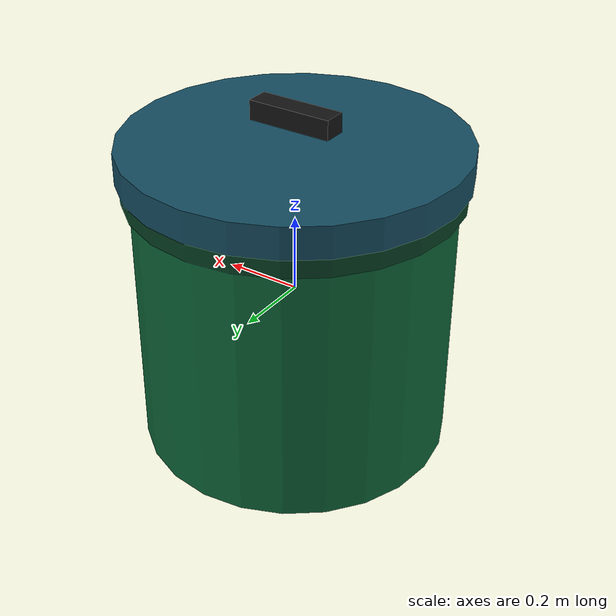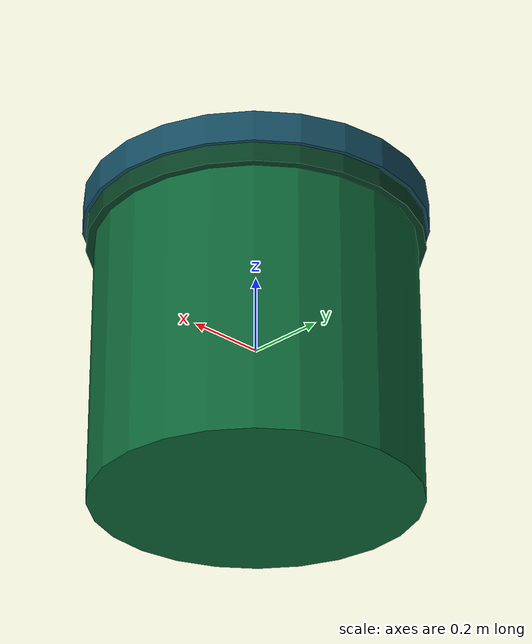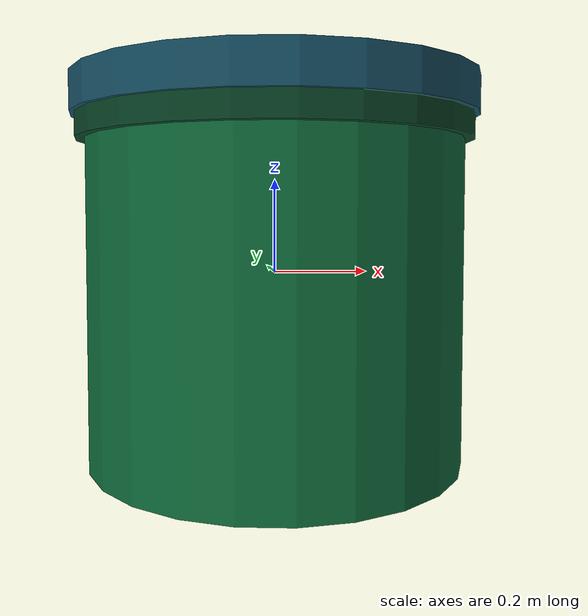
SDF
<?xml version="1.0"?>
<sdf version="1.6">
  <model name="cleannav_demo_static_cylinder">
    <static>true</static>
    <link name="link">
      <collision name="collision">
        <geometry>
          <cylinder>
            <radius>0.45</radius>
            <length>0.80</length>
          </cylinder>
        </geometry>
      </collision>
      <visual name="visual_bin">
        <pose>0 0 -0.04 0 0 0</pose>
        <geometry>
          <cylinder>
            <radius>0.40</radius>
            <length>0.72</length>
          </cylinder>
        </geometry>
        <material>
          <ambient>0.03 0.20 0.12 1</ambient>
          <diffuse>0.05 0.40 0.22 1</diffuse>
        </material>
      </visual>
      <visual name="visual_bin_rim">
        <pose>0 0 0.31 0 0 0</pose>
        <geometry>
          <cylinder>
            <radius>0.42</radius>
            <length>0.06</length>
          </cylinder>
        </geometry>
        <material>
          <ambient>0.02 0.12 0.08 1</ambient>
          <diffuse>0.03 0.25 0.14 1</diffuse>
        </material>
      </visual>
      <visual name="visual_bin_lid">
        <pose>0 0 0.37 0 0 0</pose>
        <geometry>
          <cylinder>
            <radius>0.43</radius>
            <length>0.08</length>
          </cylinder>
        </geometry>
        <material>
          <ambient>0.04 0.14 0.18 1</ambient>
          <diffuse>0.08 0.30 0.38 1</diffuse>
        </material>
      </visual>
      <visual name="visual_bin_handle">
        <pose>0 0 0.47 0 0 0</pose>
        <geometry>
          <box>
            <size>0.22 0.06 0.05</size>
          </box>
        </geometry>
        <material>
          <ambient>0.02 0.02 0.02 1</ambient>
          <diffuse>0.08 0.08 0.08 1</diffuse>
        </material>
      </visual>
    </link>
  </model>
</sdf>
